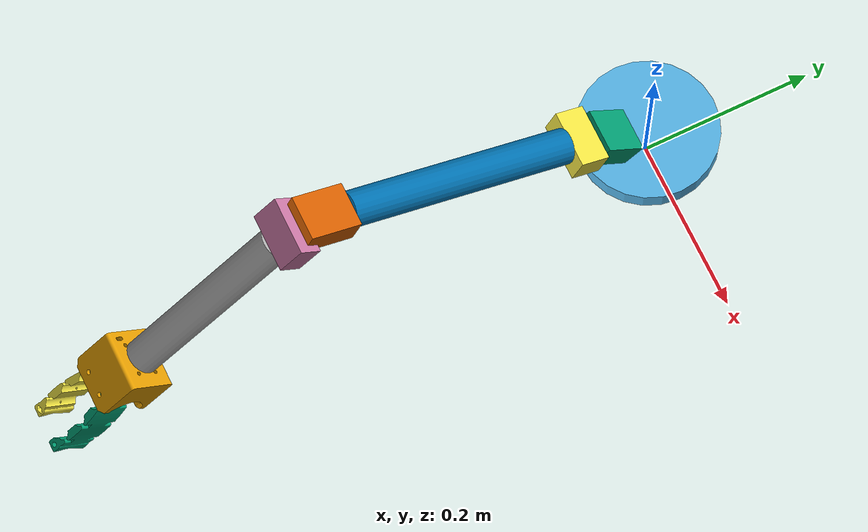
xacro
<?xml version="1.0"?>

<robot xmlns:xacro="http://www.ros.org/wiki/xacro" name="manipulator">

    <!-- TODO Adjust all links, joints, visuals, collision and inertias for theseus -->

    <xacro:arg name="is_sim" default="false" />
    <xacro:arg name="is_ignition" default="true" />

    <!-- Include Gazebo Parameters (only relevant for sim) -->
    <xacro:include filename="$(find theseus_description)/urdf/manipulator_gazebo.xacro"/>
    <!-- Include ros2_control plugins -->
    <xacro:include filename="$(find theseus_description)/urdf/manipulator_ros2_control.xacro"/>

    <!-- Mesh scale -->
    <xacro:property name="mesh_scale" value="0.001 0.001 0.001"/>

    <!-- Useful XACRO variables -->
    <xacro:property name="PI" value="3.14159265358979323846"/>
    <xacro:property name="effort" value="10.0"/>
    <xacro:property name="velocity" value="5.0"/>

    <!-- Link -->
    <xacro:property name="link2_length" value="0.235"/>
    <xacro:property name="step_reductor_height" value="0.025"/>
    <xacro:property name="finger_length" value="0.15"/>

    <!-- Arm Base Link  -->
    <xacro:property name="base_cilinder_height" value="0.025"/>
    <xacro:property name="base_cilinder_radius" value="0.08"/>
    <xacro:property name="base_servo_distance_from_center" value="0.08"/>
    <xacro:property name="joint_1_lower_limit" value="0"/>
    <xacro:property name="joint_1_upper_limit" value="${2*PI}"/>

    <!-- Arm Link 1 -->
    <xacro:property name="servo_motor_1_width" value="0.05"/>
    <xacro:property name="servo_motor_1_depth" value="0.03"/>
    <xacro:property name="servo_motor_1_height" value="0.06"/>
    <xacro:property name="servo_motor_1_angle" value="${PI/4}"/>
    <xacro:property name="servo_motor_1_offset_angle" value="-${3*PI/4}"/>
    <xacro:property name="servo_hinge_1_width" value="0.065"/>
    <xacro:property name="servo_hinge_1_depth" value="0.03"/>
    <xacro:property name="servo_hinge_1_height" value="0.035"/>

    <xacro:property name="joint_2_lower_limit" value="${PI/4}"/>
    <xacro:property name="joint_2_upper_limit" value="${3*PI/2}"/>
    <xacro:property name="link1_length" value="0.275"/>

    <!-- Arm Link 2 -->
    <xacro:property name="servo_motor_2_width" value="0.05"/>
    <xacro:property name="servo_motor_2_depth" value="0.03"/>
    <xacro:property name="servo_motor_2_height" value="0.06"/>
    <xacro:property name="servo_motor_2_offset_angle" value="-${3*PI/4}"/>
    <xacro:property name="servo_hinge_2_width" value="0.065"/>
    <xacro:property name="servo_hinge_2_depth" value="0.03"/>
    <xacro:property name="servo_hinge_2_height" value="0.035"/>

    <xacro:property name="joint_3_lower_limit" value="${3*PI/4}"/>
    <xacro:property name="joint_3_upper_limit" value="${3*PI/2}"/>

    <!-- Macros -->
    <xacro:macro name="default_inertial" params="mass">
        <inertial>
            <mass value="${mass}"/>
            <inertia ixx="1.0" ixy="0.0" ixz="0.0"
                     iyy="1.0" iyz="0.0"
                     izz="1.0"/>
        </inertial>
    </xacro:macro>

    <!-- Links and joints -->

    <link name="world"/>

    <link name="base_arm_link">
        <xacro:default_inertial mass="1.0"/>
        <visual>
            <origin rpy="0 0 0" xyz="0 0 ${base_cilinder_height}"/>
            <geometry>
                <cylinder radius="${base_cilinder_radius}" length="${base_cilinder_height}"/>
            </geometry>
        </visual>
        <collision>
            <origin rpy="0 0 0" xyz="0 0 ${base_cilinder_height}"/>
            <geometry>
                <cylinder radius="${base_cilinder_radius}" length="${base_cilinder_height}"/>
            </geometry>
        </collision>
    </link>

    <joint name="arm_joint_1" type="revolute">
        <parent link="world"/>
        <child link="base_arm_link"/>
        <axis xyz="0 0 -1"/>
        <origin rpy="0 0 0" xyz="0 0 ${base_cilinder_height}"/>
        <limit lower="${joint_1_lower_limit}" upper="${joint_1_upper_limit}" effort="${effort}" velocity="${velocity}"/>
    </joint>

    <link name="motor_link_1">
        <xacro:default_inertial mass="1.0"/>
        <visual>
            <origin rpy="0 0 0" xyz="0 0 ${servo_motor_1_depth}"/>
            <geometry>
                <box size="${servo_motor_1_width} ${servo_motor_1_depth} ${servo_motor_1_height}"/>
            </geometry>
        </visual>
        <collision>
            <origin rpy="0 0 0" xyz="0 0 ${servo_motor_1_depth}"/>
            <geometry>
                <box size="${servo_motor_1_width} ${servo_motor_1_depth} ${servo_motor_1_height}"/>
            </geometry>
        </collision>
    </link>

    <joint name="motor_joint_1" type="fixed">
        <parent link="base_arm_link"/>
        <child link="motor_link_1"/>
        <origin rpy="${servo_motor_1_angle} 0 0" xyz="0 -${servo_motor_1_depth} ${servo_motor_1_width}"/>
    </joint>

    <link name="hinge_link_1">
        <xacro:default_inertial mass="1.0"/>
        <visual>
            <origin rpy="0 0 0" xyz="0 0 ${servo_hinge_1_height/2}"/>
            <geometry>
                <box size="${servo_hinge_1_width} ${servo_hinge_1_depth} ${servo_hinge_1_height}"/>
            </geometry>
        </visual>
        <collision>
            <origin rpy="0 0 0" xyz="0 0 ${servo_hinge_1_height/2+servo_hinge_1_height/3}"/>
            <geometry>
                <box size="${servo_hinge_1_width} ${servo_hinge_1_depth} ${servo_hinge_2_height/3}"/>
            </geometry>
        </collision>
    </link>

    <joint name="hinge_joint_1" type="revolute">
        <parent link="motor_link_1"/>
        <child link="hinge_link_1"/>
        <origin rpy="${servo_motor_1_offset_angle} 0 0" xyz="0 0 ${servo_motor_1_height}"/>
        <axis xyz="1 0 0"/>
        <limit lower="${joint_2_lower_limit}" upper="${joint_2_upper_limit}" effort="${effort}" velocity="${velocity}"/>
    </joint>

    <link name="arm_link_1">
        <xacro:default_inertial mass="1.0"/>
        <visual>
            <origin rpy="0 0 0" xyz="0 0 ${link1_length/2}"/>
            <geometry>
                <cylinder radius="0.02" length="${link1_length}"/>
            </geometry>
        </visual>
        <collision>
            <origin rpy="0 0 0" xyz="0 0 ${link1_length/2}"/>
            <geometry>
                <cylinder radius="0.02" length="${link1_length}"/>
            </geometry>
        </collision>
    </link>

    <joint name="arm_joint_2" type="fixed">
        <parent link="hinge_link_1"/>
        <child link="arm_link_1"/>
        <origin rpy="0 0 0" xyz="0 0 ${servo_hinge_1_height}"/>
    </joint>

    <link name="motor_link_2">
        <xacro:default_inertial mass="1.0"/>
                <visual>
            <origin rpy="0 0 0" xyz="0 0 ${servo_motor_2_depth}"/>
            <geometry>
                <box size="${servo_motor_2_width} ${servo_motor_2_depth} ${servo_motor_2_height}"/>
            </geometry>
        </visual>
        <collision>
            <origin rpy="0 0 0" xyz="0 0 ${servo_motor_2_depth}"/>
            <geometry>
                <box size="${servo_motor_2_width} ${servo_motor_2_depth} ${servo_motor_2_height}"/>
            </geometry>
        </collision>
    </link>

    <joint name="motor_joint_2" type="fixed">
        <parent link="arm_link_1"/>
        <child link="motor_link_2"/>
        <origin rpy="0 0 0" xyz="0 0 ${link1_length}"/>
    </joint>

    <link name="hinge_link_2">
        <xacro:default_inertial mass="1.0"/>
        <visual>
            <origin rpy="0 0 0" xyz="0 0 ${servo_hinge_2_height/2}"/>
            <geometry>
                <box size="${servo_hinge_2_width} ${servo_hinge_2_depth} ${servo_hinge_2_height}"/>
            </geometry>
        </visual>
        <collision>
            <origin rpy="0 0 0" xyz="0 0 ${servo_hinge_2_height/2+servo_hinge_2_height/3}"/>
            <geometry>
                <box size="${servo_hinge_2_width} ${servo_hinge_2_depth} ${servo_hinge_2_height/3}"/>
            </geometry>
        </collision>
    </link>

    <joint name="hinge_joint_2" type="revolute">
        <parent link="motor_link_2"/>
        <child link="hinge_link_2"/>
        <origin rpy="${servo_motor_2_offset_angle} 0 0" xyz="0 0 ${servo_motor_2_height}"/>
        <axis xyz="1 0 0"/>
        <limit lower="${joint_3_lower_limit}" upper="${joint_3_upper_limit}" effort="${effort}" velocity="${velocity}"/>
    </joint>

     <link name="arm_link_2">
        <xacro:default_inertial mass="1.0"/>
        <visual>
            <origin rpy="0 0 0" xyz="0 0 ${link2_length/2}"/>
            <geometry>
                <cylinder radius="0.02" length="${link2_length}"/>
            </geometry>
        </visual>
        <collision>
            <origin rpy="0 0 0" xyz="0 0 ${link2_length/2}"/>
            <geometry>
                <cylinder radius="0.02" length="${link2_length}"/>
            </geometry>
        </collision>
    </link>

    <joint name="arm_joint_3" type="fixed">
        <parent link="hinge_link_2"/>
        <child link="arm_link_2"/>
        <origin rpy="0 0 0" xyz="0 0 ${servo_hinge_2_height}"/>
    </joint>

    <link name="claw_link">
        <xacro:default_inertial mass="1.0"/>
        <visual>
            <origin rpy="0 ${PI/2} 0" xyz="-0.09 -0.095 -0.12"/>
            <geometry>
                <mesh filename="package://theseus_description/meshes/pulso-garra.stl" scale="${mesh_scale}"/>
            </geometry>
        </visual>
        <collision>
            <origin rpy="0 0 0" xyz="0 0 0.01"/>
            <geometry>
                <mesh filename="package://theseus_description/meshes/pulso-garra.stl" scale="${mesh_scale}"/>
            </geometry>
        </collision>
    </link>

    <joint name="arm_to_claw_joint" type="fixed">
        <parent link="arm_link_2"/>
        <child link="claw_link"/>
        <origin rpy="0 0 0" xyz="0 0 ${link2_length}"/>
    </joint>

    <link name="gripper_center"/>

    <joint name="gripper_center_joint" type="fixed">
        <parent link="claw_link"/>
        <child link="gripper_center"/>
        <origin rpy="0 0 0" xyz="0 0 0.07"/>
    </joint>

    <link name="gripper_right">
        <xacro:default_inertial mass="1.0"/>
        <visual>
            <origin rpy="0 0 0" xyz="-0.0825 -0.08 0.0975"/>
            <geometry>
                <mesh filename="package://theseus_description/meshes/palma-garra.stl" scale="${mesh_scale}"/>
            </geometry>
        </visual>
        <collision>
            <origin rpy="0 0 0" xyz="-0.0825 -0.08 0.0975"/>
            <geometry>
                <mesh filename="package://theseus_description/meshes/palma-garra.stl" scale="${mesh_scale}"/>
            </geometry>
        </collision>
    </link>

    <link name="gripper_left">
        <xacro:default_inertial mass="1.0"/>
        <visual>
            <origin rpy="0 0 -${PI}" xyz="0.0825 0.08 0.0975"/>
            <geometry>
                <mesh filename="package://theseus_description/meshes/palma-garra.stl" scale="${mesh_scale}"/>
            </geometry>
        </visual>
        <collision>
            <origin rpy="0 0 -${PI}" xyz="0.0825 0.08 0.0975"/>
            <geometry>
                <mesh filename="package://theseus_description/meshes/palma-garra.stl" scale="${mesh_scale}"/>
            </geometry>
        </collision>
    </link>

    <joint name="gripper_joint_1" type="revolute">
        <parent link="claw_link"/>
        <child link="gripper_right"/>
        <axis xyz="0 1 0"/>
        <origin rpy="0 0 0" xyz="0.015 0 0.05"/>
        <limit lower="0" upper="${PI/2}" effort="${effort}" velocity="${velocity}"/>
    </joint>

    <joint name="gripper_joint_2" type="revolute">
        <parent link="claw_link"/>
        <child link="gripper_left"/>
        <origin rpy="0 0 0" xyz="-0.015 0 0.05"/>
        <mimic joint="gripper_joint_1" multiplier="-1"/>
        <limit lower="0" upper="${PI/2}" effort="${effort}" velocity="${velocity}"/>
    </joint>

    <!-- Primeiro 6cm, depois 34cm, depois 27cm -->

</robot>
